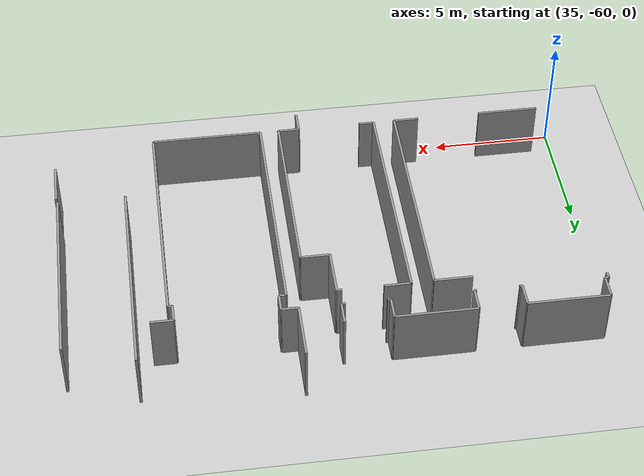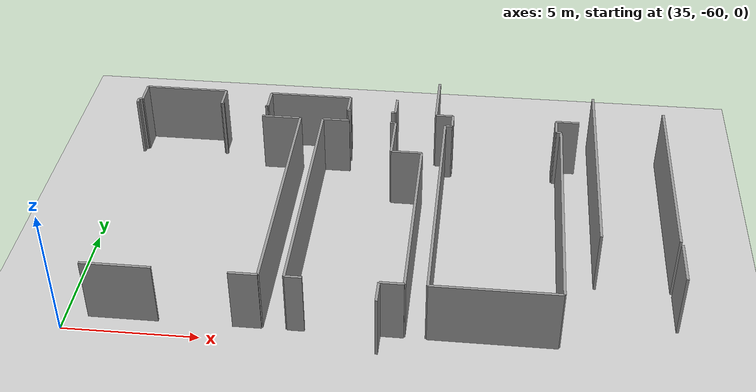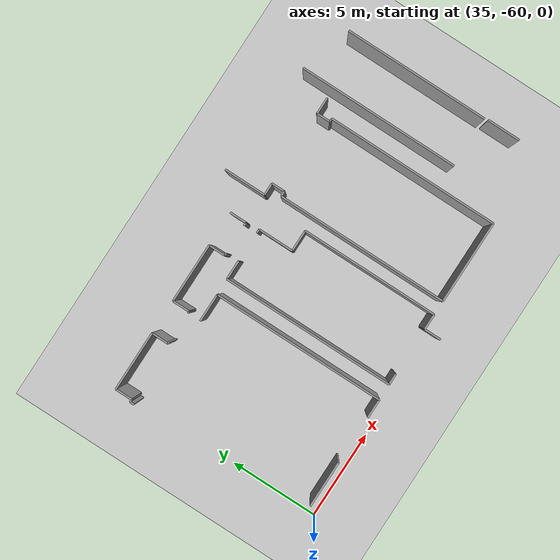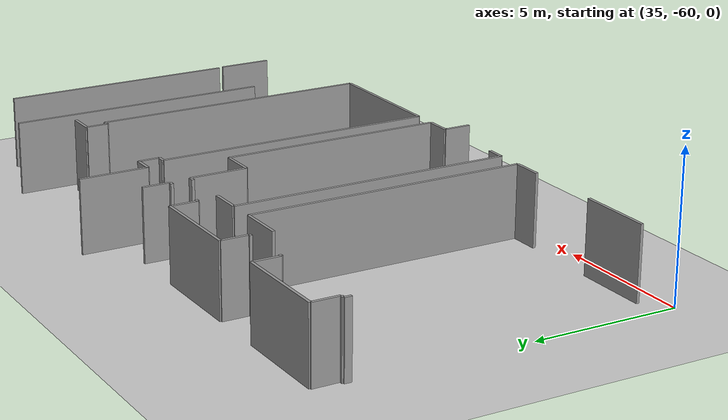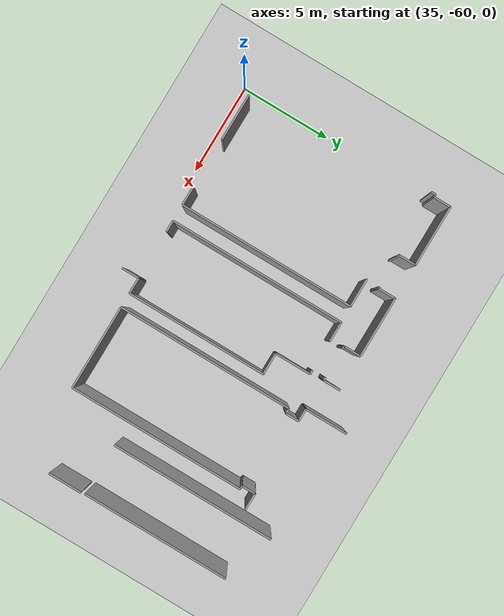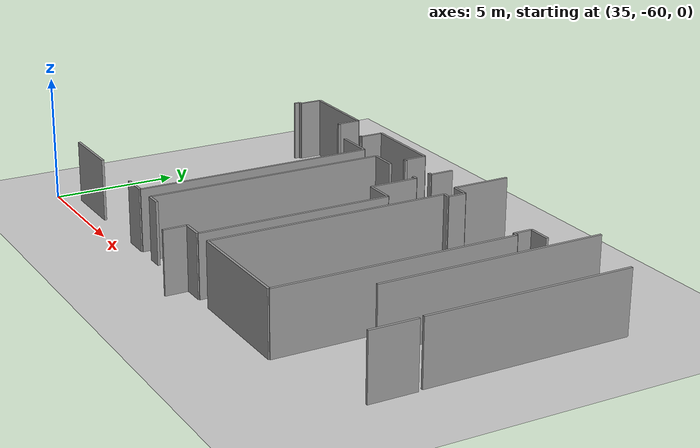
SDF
<sdf version="1.6">
 <world name="default">
  <model name="ground_plane">
   <static>1</static>
   <link name="link">
    <collision name="collision">
     <geometry><plane><normal>0 0 1</normal><size>100 100</size></plane></geometry>
     <surface><friction><ode><mu>100</mu><mu2>50</mu2></ode></friction></surface>
    </collision>
    <visual name="visual">
     <cast_shadows>0</cast_shadows>
     <geometry><plane><normal>0 0 1</normal><size>100 100</size></plane></geometry>
     <material>
      <script><uri>file://media/materials/scripts/gazebo.material</uri><name>Gazebo/Grey</name></script>
     </material>
    </visual>
   </link>
  </model>
  <model name="0510045925_40">
   <static>1</static>
   <link name="Wall_1622">
    <collision name="Wall_1622_Collision">
     <geometry><box><size>0.938808659679 0.1 2.5</size></box></geometry>
     <pose>0.469404329839 0 1.25 0 0 0</pose>
    </collision>
    <visual name="Wall_1622_Visual">
     <pose>0.469404329839 0 1.25 0 0 0</pose>
     <geometry><box><size>0.938808659679 0.1 2.5</size></box></geometry>
     <material>
      <script><uri>file://media/materials/scripts/gazebo.material</uri><name>Gazebo/Grey</name></script>
      <ambient>1 1 1 1</ambient>
     </material>
    </visual>
    <pose>179.817821883 -149.066698815 0 0 0 -1.57079632679</pose>
   </link>
   <link name="Wall_1623">
    <collision name="Wall_1623_Collision">
     <geometry><box><size>0.165731834217 0.1 2.5</size></box></geometry>
     <pose>0.0828659171087 0 1.25 0 0 0</pose>
    </collision>
    <visual name="Wall_1623_Visual">
     <pose>0.0828659171087 0 1.25 0 0 0</pose>
     <geometry><box><size>0.165731834217 0.1 2.5</size></box></geometry>
     <material>
      <script><uri>file://media/materials/scripts/gazebo.material</uri><name>Gazebo/Grey</name></script>
      <ambient>1 1 1 1</ambient>
     </material>
    </visual>
    <pose>179.817821883 -150.005507474 0 0 0 3.14159265359</pose>
   </link>
   <link name="Wall_1624">
    <collision name="Wall_1624_Collision">
     <geometry><box><size>0.130961143118 0.1 2.5</size></box></geometry>
     <pose>0.0654805715591 0 1.25 0 0 0</pose>
    </collision>
    <visual name="Wall_1624_Visual">
     <pose>0.0654805715591 0 1.25 0 0 0</pose>
     <geometry><box><size>0.130961143118 0.1 2.5</size></box></geometry>
     <material>
      <script><uri>file://media/materials/scripts/gazebo.material</uri><name>Gazebo/Grey</name></script>
      <ambient>1 1 1 1</ambient>
     </material>
    </visual>
    <pose>178.012283952 -150.005507474 0 0 0 3.14159265359</pose>
   </link>
   <link name="Wall_1625">
    <collision name="Wall_1625_Collision">
     <geometry><box><size>0.925357224436 0.1 2.5</size></box></geometry>
     <pose>0.462678612218 0 1.25 0 0 0</pose>
    </collision>
    <visual name="Wall_1625_Visual">
     <pose>0.462678612218 0 1.25 0 0 0</pose>
     <geometry><box><size>0.925357224436 0.1 2.5</size></box></geometry>
     <material>
      <script><uri>file://media/materials/scripts/gazebo.material</uri><name>Gazebo/Grey</name></script>
      <ambient>1 1 1 1</ambient>
     </material>
    </visual>
    <pose>177.881322809 -150.005507474 0 0 0 1.57079632679</pose>
   </link>
   <link name="Wall_1626">
    <collision name="Wall_1626_Collision">
     <geometry><box><size>3.29484023248 0.1 2.5</size></box></geometry>
     <pose>1.64742011624 0 1.25 0 0 0</pose>
    </collision>
    <visual name="Wall_1626_Visual">
     <pose>1.64742011624 0 1.25 0 0 0</pose>
     <geometry><box><size>3.29484023248 0.1 2.5</size></box></geometry>
     <material>
      <script><uri>file://media/materials/scripts/gazebo.material</uri><name>Gazebo/Grey</name></script>
      <ambient>1 1 1 1</ambient>
     </material>
    </visual>
    <pose>177.881322809 -149.08015025 0 0 0 3.14159265359</pose>
   </link>
   <link name="Wall_1627">
    <collision name="Wall_1627_Collision">
     <geometry><box><size>0.944899875638 0.1 2.5</size></box></geometry>
     <pose>0.472449937819 0 1.25 0 0 0</pose>
    </collision>
    <visual name="Wall_1627_Visual">
     <pose>0.472449937819 0 1.25 0 0 0</pose>
     <geometry><box><size>0.944899875638 0.1 2.5</size></box></geometry>
     <material>
      <script><uri>file://media/materials/scripts/gazebo.material</uri><name>Gazebo/Grey</name></script>
      <ambient>1 1 1 1</ambient>
     </material>
    </visual>
    <pose>174.586482577 -149.08015025 0 0 0 -1.57079632679</pose>
   </link>
   <link name="Wall_1628">
    <collision name="Wall_1628_Collision">
     <geometry><box><size>0.0949214486942 0.1 2.5</size></box></geometry>
     <pose>0.0474607243471 0 1.25 0 0 0</pose>
    </collision>
    <visual name="Wall_1628_Visual">
     <pose>0.0474607243471 0 1.25 0 0 0</pose>
     <geometry><box><size>0.0949214486942 0.1 2.5</size></box></geometry>
     <material>
      <script><uri>file://media/materials/scripts/gazebo.material</uri><name>Gazebo/Grey</name></script>
      <ambient>1 1 1 1</ambient>
     </material>
    </visual>
    <pose>174.586482577 -150.025050126 0 0 0 3.14159265359</pose>
   </link>
   <link name="Wall_1629">
    <collision name="Wall_1629_Collision">
     <geometry><box><size>0.104312073298 0.1 2.5</size></box></geometry>
     <pose>0.0521560366488 0 1.25 0 0 0</pose>
    </collision>
    <visual name="Wall_1629_Visual">
     <pose>0.0521560366488 0 1.25 0 0 0</pose>
     <geometry><box><size>0.104312073298 0.1 2.5</size></box></geometry>
     <material>
      <script><uri>file://media/materials/scripts/gazebo.material</uri><name>Gazebo/Grey</name></script>
      <ambient>1 1 1 1</ambient>
     </material>
    </visual>
    <pose>172.781198447 -150.025050126 0 0 0 3.14159265359</pose>
   </link>
   <link name="Wall_1630">
    <collision name="Wall_1630_Collision">
     <geometry><box><size>0.944646074973 0.1 2.5</size></box></geometry>
     <pose>0.472323037486 0 1.25 0 0 0</pose>
    </collision>
    <visual name="Wall_1630_Visual">
     <pose>0.472323037486 0 1.25 0 0 0</pose>
     <geometry><box><size>0.944646074973 0.1 2.5</size></box></geometry>
     <material>
      <script><uri>file://media/materials/scripts/gazebo.material</uri><name>Gazebo/Grey</name></script>
      <ambient>1 1 1 1</ambient>
     </material>
    </visual>
    <pose>172.676886373 -150.025050126 0 0 0 1.57079632679</pose>
   </link>
   <link name="Wall_1631">
    <collision name="Wall_1631_Collision">
     <geometry><box><size>3.31082967437 0.1 2.5</size></box></geometry>
     <pose>1.65541483719 0 1.25 0 0 0</pose>
    </collision>
    <visual name="Wall_1631_Visual">
     <pose>1.65541483719 0 1.25 0 0 0</pose>
     <geometry><box><size>3.31082967437 0.1 2.5</size></box></geometry>
     <material>
      <script><uri>file://media/materials/scripts/gazebo.material</uri><name>Gazebo/Grey</name></script>
      <ambient>1 1 1 1</ambient>
     </material>
    </visual>
    <pose>172.676886373 -149.080404051 0 0 0 3.14159265359</pose>
   </link>
   <link name="Wall_1632">
    <collision name="Wall_1632_Collision">
     <geometry><box><size>0.939823862339 0.1 2.5</size></box></geometry>
     <pose>0.469911931169 0 1.25 0 0 0</pose>
    </collision>
    <visual name="Wall_1632_Visual">
     <pose>0.469911931169 0 1.25 0 0 0</pose>
     <geometry><box><size>0.939823862339 0.1 2.5</size></box></geometry>
     <material>
      <script><uri>file://media/materials/scripts/gazebo.material</uri><name>Gazebo/Grey</name></script>
      <ambient>1 1 1 1</ambient>
     </material>
    </visual>
    <pose>169.366056699 -149.080404051 0 0 0 -1.57079632679</pose>
   </link>
   <link name="Wall_1633">
    <collision name="Wall_1633_Collision">
     <geometry><box><size>0.144158777696 0.1 2.5</size></box></geometry>
     <pose>0.072079388848 0 1.25 0 0 0</pose>
    </collision>
    <visual name="Wall_1633_Visual">
     <pose>0.072079388848 0 1.25 0 0 0</pose>
     <geometry><box><size>0.144158777696 0.1 2.5</size></box></geometry>
     <material>
      <script><uri>file://media/materials/scripts/gazebo.material</uri><name>Gazebo/Grey</name></script>
      <ambient>1 1 1 1</ambient>
     </material>
    </visual>
    <pose>169.366056699 -150.020227913 0 0 0 3.14159265359</pose>
   </link>
   <link name="Wall_1634">
    <collision name="Wall_1634_Collision">
     <geometry><box><size>0.244663841019 0.1 2.5</size></box></geometry>
     <pose>0.12233192051 0 1.25 0 0 0</pose>
    </collision>
    <visual name="Wall_1634_Visual">
     <pose>0.12233192051 0 1.25 0 0 0</pose>
     <geometry><box><size>0.244663841019 0.1 2.5</size></box></geometry>
     <material>
      <script><uri>file://media/materials/scripts/gazebo.material</uri><name>Gazebo/Grey</name></script>
      <ambient>1 1 1 1</ambient>
     </material>
    </visual>
    <pose>169.221897921 -150.020227913 0 0 0 -1.57079632679</pose>
   </link>
   <link name="Wall_1705">
    <collision name="Wall_1705_Collision">
     <geometry><box><size>1.55402147154 0.1 2.5</size></box></geometry>
     <pose>0.777010735768 0 1.25 0 0 0</pose>
    </collision>
    <visual name="Wall_1705_Visual">
     <pose>0.777010735768 0 1.25 0 0 0</pose>
     <geometry><box><size>1.55402147154 0.1 2.5</size></box></geometry>
     <material>
      <script><uri>file://media/materials/scripts/gazebo.material</uri><name>Gazebo/Grey</name></script>
      <ambient>1 1 1 1</ambient>
     </material>
    </visual>
    <pose>174.489023121 -150.754727037 0 0 0 0.0</pose>
   </link>
   <link name="Wall_1706">
    <collision name="Wall_1706_Collision">
     <geometry><box><size>9.59645694272 0.1 2.5</size></box></geometry>
     <pose>4.79822847136 0 1.25 0 0 0</pose>
    </collision>
    <visual name="Wall_1706_Visual">
     <pose>4.79822847136 0 1.25 0 0 0</pose>
     <geometry><box><size>9.59645694272 0.1 2.5</size></box></geometry>
     <material>
      <script><uri>file://media/materials/scripts/gazebo.material</uri><name>Gazebo/Grey</name></script>
      <ambient>1 1 1 1</ambient>
     </material>
    </visual>
    <pose>176.043044593 -150.754727037 0 0 0 -1.57079632679</pose>
   </link>
   <link name="Wall_1707">
    <collision name="Wall_1707_Collision">
     <geometry><box><size>1.04642014162 0.1 2.5</size></box></geometry>
     <pose>0.52321007081 0 1.25 0 0 0</pose>
    </collision>
    <visual name="Wall_1707_Visual">
     <pose>0.52321007081 0 1.25 0 0 0</pose>
     <geometry><box><size>1.04642014162 0.1 2.5</size></box></geometry>
     <material>
      <script><uri>file://media/materials/scripts/gazebo.material</uri><name>Gazebo/Grey</name></script>
      <ambient>1 1 1 1</ambient>
     </material>
    </visual>
    <pose>176.043044593 -160.35118398 0 0 0 3.14159265359</pose>
   </link>
   <link name="Wall_1708">
    <collision name="Wall_1708_Collision">
     <geometry><box><size>2.55856450344 0.1 2.5</size></box></geometry>
     <pose>1.27928225172 0 1.25 0 0 0</pose>
    </collision>
    <visual name="Wall_1708_Visual">
     <pose>1.27928225172 0 1.25 0 0 0</pose>
     <geometry><box><size>2.55856450344 0.1 2.5</size></box></geometry>
     <material>
      <script><uri>file://media/materials/scripts/gazebo.material</uri><name>Gazebo/Grey</name></script>
      <ambient>1 1 1 1</ambient>
     </material>
    </visual>
    <pose>172.322326844 -160.35118398 0 0 0 3.14159265359</pose>
   </link>
   <link name="Wall_1737">
    <collision name="Wall_1737_Collision">
     <geometry><box><size>0.625111037791 0.1 2.5</size></box></geometry>
     <pose>0.312555518895 0 1.25 0 0 0</pose>
    </collision>
    <visual name="Wall_1737_Visual">
     <pose>0.312555518895 0 1.25 0 0 0</pose>
     <geometry><box><size>0.625111037791 0.1 2.5</size></box></geometry>
     <material>
      <script><uri>file://media/materials/scripts/gazebo.material</uri><name>Gazebo/Grey</name></script>
      <ambient>1 1 1 1</ambient>
     </material>
    </visual>
    <pose>177.576000609 -160.341793355 0 0 0 3.14159265359</pose>
   </link>
   <link name="Wall_1738">
    <collision name="Wall_1738_Collision">
     <geometry><box><size>9.60813177331 0.1 2.5</size></box></geometry>
     <pose>4.80406588665 0 1.25 0 0 0</pose>
    </collision>
    <visual name="Wall_1738_Visual">
     <pose>4.80406588665 0 1.25 0 0 0</pose>
     <geometry><box><size>9.60813177331 0.1 2.5</size></box></geometry>
     <material>
      <script><uri>file://media/materials/scripts/gazebo.material</uri><name>Gazebo/Grey</name></script>
      <ambient>1 1 1 1</ambient>
     </material>
    </visual>
    <pose>176.950889571 -160.341793355 0 0 0 1.57079632679</pose>
   </link>
   <link name="Wall_1739">
    <collision name="Wall_1739_Collision">
     <geometry><box><size>1.08322123804 0.1 2.5</size></box></geometry>
     <pose>0.54161061902 0 1.25 0 0 0</pose>
    </collision>
    <visual name="Wall_1739_Visual">
     <pose>0.54161061902 0 1.25 0 0 0</pose>
     <geometry><box><size>1.08322123804 0.1 2.5</size></box></geometry>
     <material>
      <script><uri>file://media/materials/scripts/gazebo.material</uri><name>Gazebo/Grey</name></script>
      <ambient>1 1 1 1</ambient>
     </material>
    </visual>
    <pose>176.950889571 -150.733661582 0 0 0 0.0</pose>
   </link>
   <link name="Wall_1740">
    <collision name="Wall_1740_Collision">
     <geometry><box><size>0.213446359229 0.1 2.5</size></box></geometry>
     <pose>0.106723179615 0 1.25 0 0 0</pose>
    </collision>
    <visual name="Wall_1740_Visual">
     <pose>0.106723179615 0 1.25 0 0 0</pose>
     <geometry><box><size>0.213446359229 0.1 2.5</size></box></geometry>
     <material>
      <script><uri>file://media/materials/scripts/gazebo.material</uri><name>Gazebo/Grey</name></script>
      <ambient>1 1 1 1</ambient>
     </material>
    </visual>
    <pose>179.68330753 -150.733661582 0 0 0 0.0</pose>
   </link>
   <link name="Wall_1741">
    <collision name="Wall_1741_Collision">
     <geometry><box><size>1.95604172483 0.1 2.5</size></box></geometry>
     <pose>0.978020862415 0 1.25 0 0 0</pose>
    </collision>
    <visual name="Wall_1741_Visual">
     <pose>0.978020862415 0 1.25 0 0 0</pose>
     <geometry><box><size>1.95604172483 0.1 2.5</size></box></geometry>
     <material>
      <script><uri>file://media/materials/scripts/gazebo.material</uri><name>Gazebo/Grey</name></script>
      <ambient>1 1 1 1</ambient>
     </material>
    </visual>
    <pose>179.896753889 -150.733661582 0 0 0 -1.57079632679</pose>
   </link>
   <link name="Wall_1742">
    <collision name="Wall_1742_Collision">
     <geometry><box><size>1.18651810868 0.1 2.5</size></box></geometry>
     <pose>0.593259054339 0 1.25 0 0 0</pose>
    </collision>
    <visual name="Wall_1742_Visual">
     <pose>0.593259054339 0 1.25 0 0 0</pose>
     <geometry><box><size>1.18651810868 0.1 2.5</size></box></geometry>
     <material>
      <script><uri>file://media/materials/scripts/gazebo.material</uri><name>Gazebo/Grey</name></script>
      <ambient>1 1 1 1</ambient>
     </material>
    </visual>
    <pose>179.896753889 -152.689703307 0 0 0 0.0</pose>
   </link>
   <link name="Wall_1743">
    <collision name="Wall_1743_Collision">
     <geometry><box><size>7.64244562321 0.1 2.5</size></box></geometry>
     <pose>3.8212228116 0 1.25 0 0 0</pose>
    </collision>
    <visual name="Wall_1743_Visual">
     <pose>3.8212228116 0 1.25 0 0 0</pose>
     <geometry><box><size>7.64244562321 0.1 2.5</size></box></geometry>
     <material>
      <script><uri>file://media/materials/scripts/gazebo.material</uri><name>Gazebo/Grey</name></script>
      <ambient>1 1 1 1</ambient>
     </material>
    </visual>
    <pose>181.083271998 -152.689703307 0 0 0 -1.57079632679</pose>
   </link>
   <link name="Wall_1744">
    <collision name="Wall_1744_Collision">
     <geometry><box><size>0.8712976828 0.1 2.5</size></box></geometry>
     <pose>0.4356488414 0 1.25 0 0 0</pose>
    </collision>
    <visual name="Wall_1744_Visual">
     <pose>0.4356488414 0 1.25 0 0 0</pose>
     <geometry><box><size>0.8712976828 0.1 2.5</size></box></geometry>
     <material>
      <script><uri>file://media/materials/scripts/gazebo.material</uri><name>Gazebo/Grey</name></script>
      <ambient>1 1 1 1</ambient>
     </material>
    </visual>
    <pose>181.083271998 -160.33214893 0 0 0 3.14159265359</pose>
   </link>
   <link name="Wall_1745">
    <collision name="Wall_1745_Collision">
     <geometry><box><size>0.939823862339 0.1 2.5</size></box></geometry>
     <pose>0.469911931169 0 1.25 0 0 0</pose>
    </collision>
    <visual name="Wall_1745_Visual">
     <pose>0.469911931169 0 1.25 0 0 0</pose>
     <geometry><box><size>0.939823862339 0.1 2.5</size></box></geometry>
     <material>
      <script><uri>file://media/materials/scripts/gazebo.material</uri><name>Gazebo/Grey</name></script>
      <ambient>1 1 1 1</ambient>
     </material>
    </visual>
    <pose>180.211974315 -160.33214893 0 0 0 -1.57079632679</pose>
   </link>
   <link name="Wall_1769">
    <collision name="Wall_1769_Collision">
     <geometry><box><size>9.58275170681 0.1 2.5</size></box></geometry>
     <pose>4.7913758534 0 1.25 0 0 0</pose>
    </collision>
    <visual name="Wall_1769_Visual">
     <pose>4.7913758534 0 1.25 0 0 0</pose>
     <geometry><box><size>9.58275170681 0.1 2.5</size></box></geometry>
     <material>
      <script><uri>file://media/materials/scripts/gazebo.material</uri><name>Gazebo/Grey</name></script>
      <ambient>1 1 1 1</ambient>
     </material>
    </visual>
    <pose>181.876145276 -160.332656532 0 0 0 1.57079632679</pose>
   </link>
   <link name="Wall_1770">
    <collision name="Wall_1770_Collision">
     <geometry><box><size>0.281972538768 0.1 2.5</size></box></geometry>
     <pose>0.140986269384 0 1.25 0 0 0</pose>
    </collision>
    <visual name="Wall_1770_Visual">
     <pose>0.140986269384 0 1.25 0 0 0</pose>
     <geometry><box><size>0.281972538768 0.1 2.5</size></box></geometry>
     <material>
      <script><uri>file://media/materials/scripts/gazebo.material</uri><name>Gazebo/Grey</name></script>
      <ambient>1 1 1 1</ambient>
     </material>
    </visual>
    <pose>181.876145276 -150.749904825 0 0 0 0.0</pose>
   </link>
   <link name="Wall_1771">
    <collision name="Wall_1771_Collision">
     <geometry><box><size>0.725616101114 0.1 2.5</size></box></geometry>
     <pose>0.362808050557 0 1.25 0 0 0</pose>
    </collision>
    <visual name="Wall_1771_Visual">
     <pose>0.362808050557 0 1.25 0 0 0</pose>
     <geometry><box><size>0.725616101114 0.1 2.5</size></box></geometry>
     <material>
      <script><uri>file://media/materials/scripts/gazebo.material</uri><name>Gazebo/Grey</name></script>
      <ambient>1 1 1 1</ambient>
     </material>
    </visual>
    <pose>182.158117814 -150.749904825 0 0 0 1.57079632679</pose>
   </link>
   <link name="Wall_1772">
    <collision name="Wall_1772_Collision">
     <geometry><box><size>0.682723788736 0.1 2.5</size></box></geometry>
     <pose>0.341361894368 0 1.25 0 0 0</pose>
    </collision>
    <visual name="Wall_1772_Visual">
     <pose>0.341361894368 0 1.25 0 0 0</pose>
     <geometry><box><size>0.682723788736 0.1 2.5</size></box></geometry>
     <material>
      <script><uri>file://media/materials/scripts/gazebo.material</uri><name>Gazebo/Grey</name></script>
      <ambient>1 1 1 1</ambient>
     </material>
    </visual>
    <pose>182.158117814 -150.024288724 0 0 0 3.14159265359</pose>
   </link>
   <link name="Wall_1773">
    <collision name="Wall_1773_Collision">
     <geometry><box><size>2.32989010431 0.1 2.5</size></box></geometry>
     <pose>1.16494505216 0 1.25 0 0 0</pose>
    </collision>
    <visual name="Wall_1773_Visual">
     <pose>1.16494505216 0 1.25 0 0 0</pose>
     <geometry><box><size>2.32989010431 0.1 2.5</size></box></geometry>
     <material>
      <script><uri>file://media/materials/scripts/gazebo.material</uri><name>Gazebo/Grey</name></script>
      <ambient>1 1 1 1</ambient>
     </material>
    </visual>
    <pose>181.475394026 -150.024288724 0 0 0 1.57079632679</pose>
   </link>
   <link name="Wall_1778">
    <collision name="Wall_1778_Collision">
     <geometry><box><size>0.917489403822 0.1 2.5</size></box></geometry>
     <pose>0.458744701911 0 1.25 0 0 0</pose>
    </collision>
    <visual name="Wall_1778_Visual">
     <pose>0.458744701911 0 1.25 0 0 0</pose>
     <geometry><box><size>0.917489403822 0.1 2.5</size></box></geometry>
     <material>
      <script><uri>file://media/materials/scripts/gazebo.material</uri><name>Gazebo/Grey</name></script>
      <ambient>1 1 1 1</ambient>
     </material>
    </visual>
    <pose>187.21357326 -150.014644298 0 0 0 3.14159265359</pose>
   </link>
   <link name="Wall_1779">
    <collision name="Wall_1779_Collision">
     <geometry><box><size>0.740082739017 0.1 2.5</size></box></geometry>
     <pose>0.370041369508 0 1.25 0 0 0</pose>
    </collision>
    <visual name="Wall_1779_Visual">
     <pose>0.370041369508 0 1.25 0 0 0</pose>
     <geometry><box><size>0.740082739017 0.1 2.5</size></box></geometry>
     <material>
      <script><uri>file://media/materials/scripts/gazebo.material</uri><name>Gazebo/Grey</name></script>
      <ambient>1 1 1 1</ambient>
     </material>
    </visual>
    <pose>186.296083856 -150.014644298 0 0 0 -1.57079632679</pose>
   </link>
   <link name="Wall_1780">
    <collision name="Wall_1780_Collision">
     <geometry><box><size>0.18019847212 0.1 2.5</size></box></geometry>
     <pose>0.09009923606 0 1.25 0 0 0</pose>
    </collision>
    <visual name="Wall_1780_Visual">
     <pose>0.09009923606 0 1.25 0 0 0</pose>
     <geometry><box><size>0.18019847212 0.1 2.5</size></box></geometry>
     <material>
      <script><uri>file://media/materials/scripts/gazebo.material</uri><name>Gazebo/Grey</name></script>
      <ambient>1 1 1 1</ambient>
     </material>
    </visual>
    <pose>186.296083856 -150.754727037 0 0 0 0.0</pose>
   </link>
   <link name="Wall_1781">
    <collision name="Wall_1781_Collision">
     <geometry><box><size>9.58224410548 0.1 2.5</size></box></geometry>
     <pose>4.79112205274 0 1.25 0 0 0</pose>
    </collision>
    <visual name="Wall_1781_Visual">
     <pose>4.79112205274 0 1.25 0 0 0</pose>
     <geometry><box><size>9.58224410548 0.1 2.5</size></box></geometry>
     <material>
      <script><uri>file://media/materials/scripts/gazebo.material</uri><name>Gazebo/Grey</name></script>
      <ambient>1 1 1 1</ambient>
     </material>
    </visual>
    <pose>186.476282328 -150.754727037 0 0 0 -1.57079632679</pose>
   </link>
   <link name="Wall_1782">
    <collision name="Wall_1782_Collision">
     <geometry><box><size>4.60013907576 0.1 2.5</size></box></geometry>
     <pose>2.30006953788 0 1.25 0 0 0</pose>
    </collision>
    <visual name="Wall_1782_Visual">
     <pose>2.30006953788 0 1.25 0 0 0</pose>
     <geometry><box><size>4.60013907576 0.1 2.5</size></box></geometry>
     <material>
      <script><uri>file://media/materials/scripts/gazebo.material</uri><name>Gazebo/Grey</name></script>
      <ambient>1 1 1 1</ambient>
     </material>
    </visual>
    <pose>186.476282328 -160.336971143 0 0 0 3.14065472283</pose>
   </link>
   <link name="Wall_1817">
    <collision name="Wall_1817_Collision">
     <geometry><box><size>8.04801908581 0.1 2.5</size></box></geometry>
     <pose>4.02400954291 0 1.25 0 0 0</pose>
    </collision>
    <visual name="Wall_1817_Visual">
     <pose>4.02400954291 0 1.25 0 0 0</pose>
     <geometry><box><size>8.04801908581 0.1 2.5</size></box></geometry>
     <material>
      <script><uri>file://media/materials/scripts/gazebo.material</uri><name>Gazebo/Grey</name></script>
      <ambient>1 1 1 1</ambient>
     </material>
    </visual>
    <pose>190.59927413 -149.092332682 0 0 0 -1.57079632679</pose>
   </link>
   <link name="Wall_1818">
    <collision name="Wall_1818_Collision">
     <geometry><box><size>8.95535646303 0.1 2.5</size></box></geometry>
     <pose>4.47767823152 0 1.25 0 0 0</pose>
    </collision>
    <visual name="Wall_1818_Visual">
     <pose>4.47767823152 0 1.25 0 0 0</pose>
     <geometry><box><size>8.95535646303 0.1 2.5</size></box></geometry>
     <material>
      <script><uri>file://media/materials/scripts/gazebo.material</uri><name>Gazebo/Grey</name></script>
      <ambient>1 1 1 1</ambient>
     </material>
    </visual>
    <pose>187.816349839 -157.140351768 0 0 0 1.57079632679</pose>
   </link>
   <link name="Wall_2001">
    <collision name="Wall_2001_Collision">
     <geometry><box><size>1.84284662826 0.1 2.5</size></box></geometry>
     <pose>0.921423314129 0 1.25 0 0 0</pose>
    </collision>
    <visual name="Wall_2001_Visual">
     <pose>0.921423314129 0 1.25 0 0 0</pose>
     <geometry><box><size>1.84284662826 0.1 2.5</size></box></geometry>
     <material>
      <script><uri>file://media/materials/scripts/gazebo.material</uri><name>Gazebo/Grey</name></script>
      <ambient>1 1 1 1</ambient>
     </material>
    </visual>
    <pose>190.648511459 -157.314712825 0 0 0 -1.57079632679</pose>
   </link>
   <pose>-133.95 101.083118449 0 0 0 0</pose>
  </model>
 </world>
</sdf>
